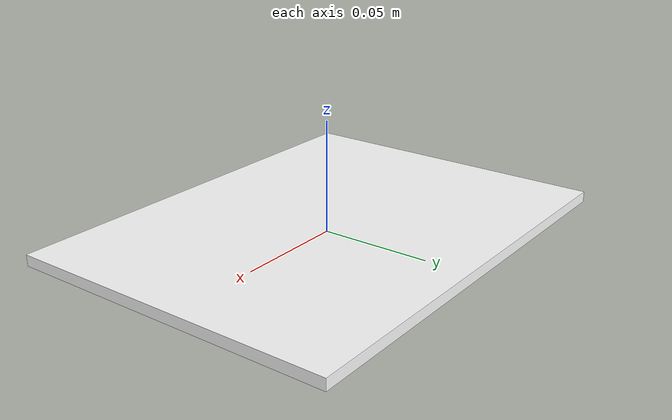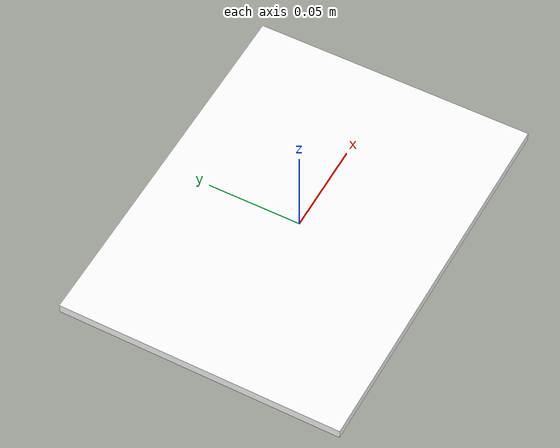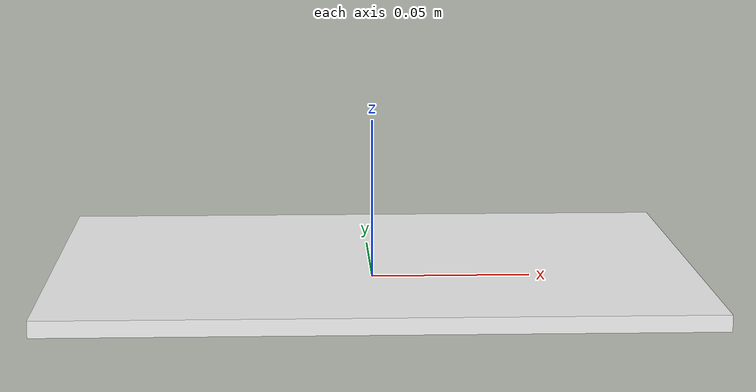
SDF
<?xml version="1.0"?>
<sdf version="1.9">
  <model name="feature_target">
    <static>true</static>
    <link name="link">
      <collision name="collision">
        <pose>0 0 0.0025 0 0 0</pose>
        <geometry><box><size>0.2 0.15 0.005</size></box></geometry>
      </collision>
      <visual name="visual">
        <pose>0 0 0.0025 0 0 0</pose>
        <geometry><box><size>0.2 0.15 0.005</size></box></geometry>
        <material>
          <ambient>1 1 1 1</ambient>
          <diffuse>1 1 1 1</diffuse>
          <specular>0.05 0.05 0.05 1</specular>
          <pbr>
            <metal>
              <albedo_map>model://feature_target/materials/textures/feature_board.png</albedo_map>
              <roughness>0.9</roughness>
              <metalness>0.0</metalness>
            </metal>
          </pbr>
        </material>
      </visual>
    </link>
  </model>
</sdf>
